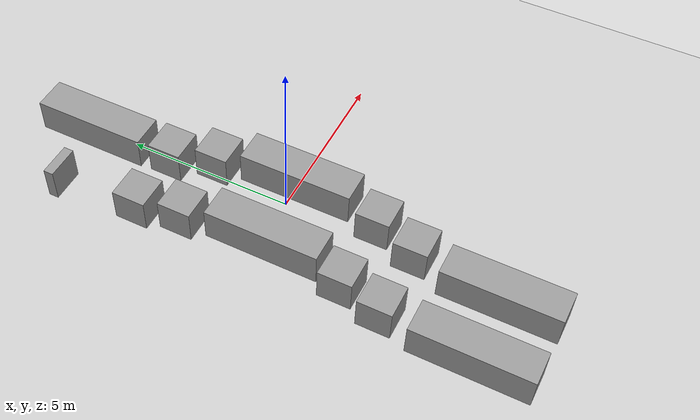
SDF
<sdf version="1.6">
 <world name="default">
  <light name="sun" type="directional">
   <pose>0 0 10 0 -0 0</pose>
   <diffuse>0.8 0.8 0.8 1</diffuse>
   <specular>0.1 0.1 0.1 1</specular>
   <attenuation>
    <range>1000</range>
    <constant>0.9</constant>
    <linear>0.01</linear>
    <quadratic>0.001</quadratic>
   </attenuation>
   <direction>-0.5 0.5 -1</direction>
  </light>
  <model name="ground_plane">
   <static>1</static>
   <link name="link">
    <collision name="collision">
     <geometry><plane><normal>0 0 1</normal><size>100 100</size></plane></geometry>
     <surface><friction><ode><mu>100</mu><mu2>50</mu2></ode></friction></surface>
    </collision>
    <visual name="visual">
     <cast_shadows>0</cast_shadows>
     <geometry><plane><normal>0 0 1</normal><size>100 100</size></plane></geometry>
     <material>
      <script><uri>file://media/materials/scripts/gazebo.material</uri><name>Gazebo/Grey</name></script>
     </material>
    </visual>
   </link>
  </model>
  <gravity>0 0 -1.62</gravity>
  <magnetic_field>6e-06 2.3e-05 -4.2e-05</magnetic_field>
  <atmosphere type="adiabatic"/>
  <physics name="default_physics" default="0" type="ode">
   <max_step_size>0.001</max_step_size>
   <real_time_factor>1</real_time_factor>
   <real_time_update_rate>1000</real_time_update_rate>
  </physics>
  <scene><ambient>0.4 0.4 0.4 1</ambient><background>0.7 0.7 0.7 1</background><shadows>1</shadows></scene>
  <spherical_coordinates>
   <surface_model>EARTH_WGS84</surface_model>
   <latitude_deg>0</latitude_deg>
   <longitude_deg>0</longitude_deg>
   <elevation>0</elevation>
   <heading_deg>0</heading_deg>
  </spherical_coordinates>
  <model name="unit_box_2">
   <pose>-1.81903 2.23605 0.499999 2e-06 -0 0</pose>
   <link name="link">
    <inertial>
     <mass>1</mass>
     <inertia>
      <ixx>0.166667</ixx>
      <ixy>0</ixy>
      <ixz>0</ixz>
      <iyy>0.166667</iyy>
      <iyz>0</iyz>
      <izz>0.166667</izz>
     </inertia>
    </inertial>
    <collision name="collision"><geometry><box><size>1 1 1</size></box></geometry></collision>
    <visual name="visual">
     <geometry><box><size>1 1 1</size></box></geometry>
     <material>
      <script><name>Gazebo/Grey</name><uri>file://media/materials/scripts/gazebo.material</uri></script>
     </material>
    </visual>
   </link>
  </model>
  <model name="unit_box_3">
   <pose>-2.05569 3.53374 0.499999 2e-06 -0 0</pose>
   <link name="link">
    <inertial>
     <mass>1</mass>
     <inertia>
      <ixx>0.166667</ixx>
      <ixy>0</ixy>
      <ixz>0</ixz>
      <iyy>0.166667</iyy>
      <iyz>0</iyz>
      <izz>0.166667</izz>
     </inertia>
    </inertial>
    <collision name="collision"><geometry><box><size>1 1 1</size></box></geometry></collision>
    <visual name="visual">
     <geometry><box><size>1 1 1</size></box></geometry>
     <material>
      <script><name>Gazebo/Grey</name><uri>file://media/materials/scripts/gazebo.material</uri></script>
     </material>
    </visual>
   </link>
  </model>
  <model name="unit_box_6">
   <pose>0.344341 2.32537 0.499999 2e-06 -0 0</pose>
   <link name="link">
    <inertial>
     <mass>1</mass>
     <inertia>
      <ixx>0.166667</ixx>
      <ixy>0</ixy>
      <ixz>0</ixz>
      <iyy>0.166667</iyy>
      <iyz>0</iyz>
      <izz>0.166667</izz>
     </inertia>
    </inertial>
    <collision name="collision"><geometry><box><size>1 1 1</size></box></geometry></collision>
    <visual name="visual">
     <geometry><box><size>1 1 1</size></box></geometry>
     <material>
      <script><name>Gazebo/Grey</name><uri>file://media/materials/scripts/gazebo.material</uri></script>
     </material>
    </visual>
   </link>
  </model>
  <model name="unit_box_7">
   <pose>-0.116305 3.59788 0.499999 2e-06 -0 0</pose>
   <link name="link">
    <inertial>
     <mass>1</mass>
     <inertia>
      <ixx>0.166667</ixx>
      <ixy>0</ixy>
      <ixz>0</ixz>
      <iyy>0.166667</iyy>
      <iyz>0</iyz>
      <izz>0.166667</izz>
     </inertia>
    </inertial>
    <collision name="collision"><geometry><box><size>1 1 1</size></box></geometry></collision>
    <visual name="visual">
     <geometry><box><size>1 1 1</size></box></geometry>
     <material>
      <script><name>Gazebo/Grey</name><uri>file://media/materials/scripts/gazebo.material</uri></script>
     </material>
    </visual>
   </link>
  </model>
  <model name="unit_box_8_0">
   <pose>-2.26994 6.01669 0.499996 -3e-06 -0 1e-06</pose>
   <link name="link">
    <inertial>
     <mass>1</mass>
     <inertia>
      <ixx>0.166667</ixx>
      <ixy>0</ixy>
      <ixz>0</ixz>
      <iyy>0.166667</iyy>
      <iyz>0</iyz>
      <izz>0.166667</izz>
     </inertia>
    </inertial>
    <collision name="collision"><geometry><box><size>1 0.293515 1</size></box></geometry></collision>
    <visual name="visual">
     <geometry><box><size>1 0.293515 1</size></box></geometry>
     <material>
      <script><name>Gazebo/Grey</name><uri>file://media/materials/scripts/gazebo.material</uri></script>
     </material>
    </visual>
   </link>
  </model>
  <model name="unit_box_8_0_clone">
   <pose>-0.159391 6.1217 0.499995 3e-06 -0 0</pose>
   <link name="link">
    <inertial>
     <mass>1</mass>
     <inertia>
      <ixx>0.166667</ixx>
      <ixy>0</ixy>
      <ixz>0</ixz>
      <iyy>0.166667</iyy>
      <iyz>0</iyz>
      <izz>0.166667</izz>
     </inertia>
    </inertial>
    <collision name="collision"><geometry><box><size>1 3.40701 1</size></box></geometry></collision>
    <visual name="visual">
     <geometry><box><size>1 3.40701 1</size></box></geometry>
     <material>
      <script><name>Gazebo/Grey</name><uri>file://media/materials/scripts/gazebo.material</uri></script>
     </material>
    </visual>
   </link>
  </model>
  <model name="unit_box_8_0_clone_0">
   <pose>0.74525 -0.123191 0.499995 -3e-06 0 0</pose>
   <link name="link">
    <inertial>
     <mass>1</mass>
     <inertia>
      <ixx>0.166667</ixx>
      <ixy>0</ixy>
      <ixz>0</ixz>
      <iyy>0.166667</iyy>
      <iyz>0</iyz>
      <izz>0.166667</izz>
     </inertia>
    </inertial>
    <collision name="collision"><geometry><box><size>1 3.40701 1</size></box></geometry></collision>
    <visual name="visual">
     <geometry><box><size>1 3.40701 1</size></box></geometry>
     <material>
      <script><name>Gazebo/Grey</name><uri>file://media/materials/scripts/gazebo.material</uri></script>
     </material>
    </visual>
   </link>
  </model>
  <model name="unit_box_8_0_clone_1">
   <pose>-1.50289 -0.251267 0.499995 3e-06 -0 0</pose>
   <link name="link">
    <inertial>
     <mass>1</mass>
     <inertia>
      <ixx>0.166667</ixx>
      <ixy>0</ixy>
      <ixz>0</ixz>
      <iyy>0.166667</iyy>
      <iyz>0</iyz>
      <izz>0.166667</izz>
     </inertia>
    </inertial>
    <collision name="collision"><geometry><box><size>1 3.40701 1</size></box></geometry></collision>
    <visual name="visual">
     <geometry><box><size>1 3.40701 1</size></box></geometry>
     <material>
      <script><name>Gazebo/Grey</name><uri>file://media/materials/scripts/gazebo.material</uri></script>
     </material>
    </visual>
   </link>
  </model>
  <model name="unit_box_2_clone">
   <pose>-1.87281 -2.6569 0.499999 -2e-06 0 0</pose>
   <link name="link">
    <inertial>
     <mass>1</mass>
     <inertia>
      <ixx>0.166667</ixx>
      <ixy>0</ixy>
      <ixz>0</ixz>
      <iyy>0.166667</iyy>
      <iyz>0</iyz>
      <izz>0.166667</izz>
     </inertia>
    </inertial>
    <collision name="collision"><geometry><box><size>1 1 1</size></box></geometry></collision>
    <visual name="visual">
     <geometry><box><size>1 1 1</size></box></geometry>
     <material>
      <script><name>Gazebo/Grey</name><uri>file://media/materials/scripts/gazebo.material</uri></script>
     </material>
    </visual>
   </link>
  </model>
  <model name="unit_box_2_clone_0">
   <pose>0.355034 -2.69549 0.499999 -2e-06 0 0</pose>
   <link name="link">
    <inertial>
     <mass>1</mass>
     <inertia>
      <ixx>0.166667</ixx>
      <ixy>0</ixy>
      <ixz>0</ixz>
      <iyy>0.166667</iyy>
      <iyz>0</iyz>
      <izz>0.166667</izz>
     </inertia>
    </inertial>
    <collision name="collision"><geometry><box><size>1 1 1</size></box></geometry></collision>
    <visual name="visual">
     <geometry><box><size>1 1 1</size></box></geometry>
     <material>
      <script><name>Gazebo/Grey</name><uri>file://media/materials/scripts/gazebo.material</uri></script>
     </material>
    </visual>
   </link>
  </model>
  <model name="unit_box_2_clone_1">
   <pose>-2.21579 -3.94186 0.499999 2e-06 -0 0</pose>
   <link name="link">
    <inertial>
     <mass>1</mass>
     <inertia>
      <ixx>0.166667</ixx>
      <ixy>0</ixy>
      <ixz>0</ixz>
      <iyy>0.166667</iyy>
      <iyz>0</iyz>
      <izz>0.166667</izz>
     </inertia>
    </inertial>
    <collision name="collision"><geometry><box><size>1 1 1</size></box></geometry></collision>
    <visual name="visual">
     <geometry><box><size>1 1 1</size></box></geometry>
     <material>
      <script><name>Gazebo/Grey</name><uri>file://media/materials/scripts/gazebo.material</uri></script>
     </material>
    </visual>
   </link>
  </model>
  <model name="unit_box_2_clone_2">
   <pose>-0.095086 -4.00105 0.499999 2e-06 -0 0</pose>
   <link name="link">
    <inertial>
     <mass>1</mass>
     <inertia>
      <ixx>0.166667</ixx>
      <ixy>0</ixy>
      <ixz>0</ixz>
      <iyy>0.166667</iyy>
      <iyz>0</iyz>
      <izz>0.166667</izz>
     </inertia>
    </inertial>
    <collision name="collision"><geometry><box><size>1 1 1</size></box></geometry></collision>
    <visual name="visual">
     <geometry><box><size>1 1 1</size></box></geometry>
     <material>
      <script><name>Gazebo/Grey</name><uri>file://media/materials/scripts/gazebo.material</uri></script>
     </material>
    </visual>
   </link>
  </model>
  <model name="unit_box_8_0_clone_1_clone">
   <pose>-2.38267 -6.6174 0.499995 3e-06 -0 0</pose>
   <link name="link">
    <inertial>
     <mass>1</mass>
     <inertia>
      <ixx>0.166667</ixx>
      <ixy>0</ixy>
      <ixz>0</ixz>
      <iyy>0.166667</iyy>
      <iyz>0</iyz>
      <izz>0.166667</izz>
     </inertia>
    </inertial>
    <collision name="collision"><geometry><box><size>1 3.40701 1</size></box></geometry></collision>
    <visual name="visual">
     <geometry><box><size>1 3.40701 1</size></box></geometry>
     <material>
      <script><name>Gazebo/Grey</name><uri>file://media/materials/scripts/gazebo.material</uri></script>
     </material>
    </visual>
   </link>
  </model>
  <model name="unit_box_8_0_clone_1_clone_0">
   <pose>-0.381898 -6.63587 0.499995 -3e-06 0 0</pose>
   <link name="link">
    <inertial>
     <mass>1</mass>
     <inertia>
      <ixx>0.166667</ixx>
      <ixy>0</ixy>
      <ixz>0</ixz>
      <iyy>0.166667</iyy>
      <iyz>0</iyz>
      <izz>0.166667</izz>
     </inertia>
    </inertial>
    <collision name="collision"><geometry><box><size>1 3.40701 1</size></box></geometry></collision>
    <visual name="visual">
     <geometry><box><size>1 3.40701 1</size></box></geometry>
     <material>
      <script><name>Gazebo/Grey</name><uri>file://media/materials/scripts/gazebo.material</uri></script>
     </material>
    </visual>
   </link>
  </model>
 </world>
</sdf>
